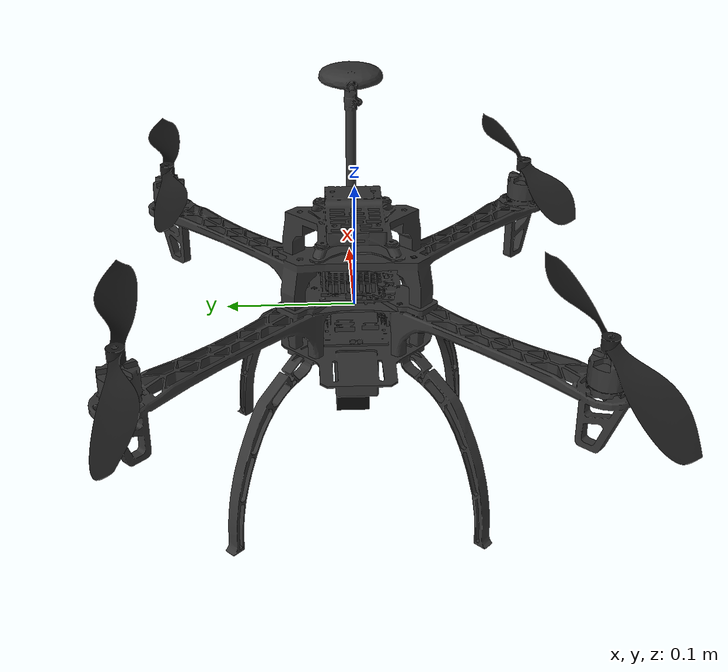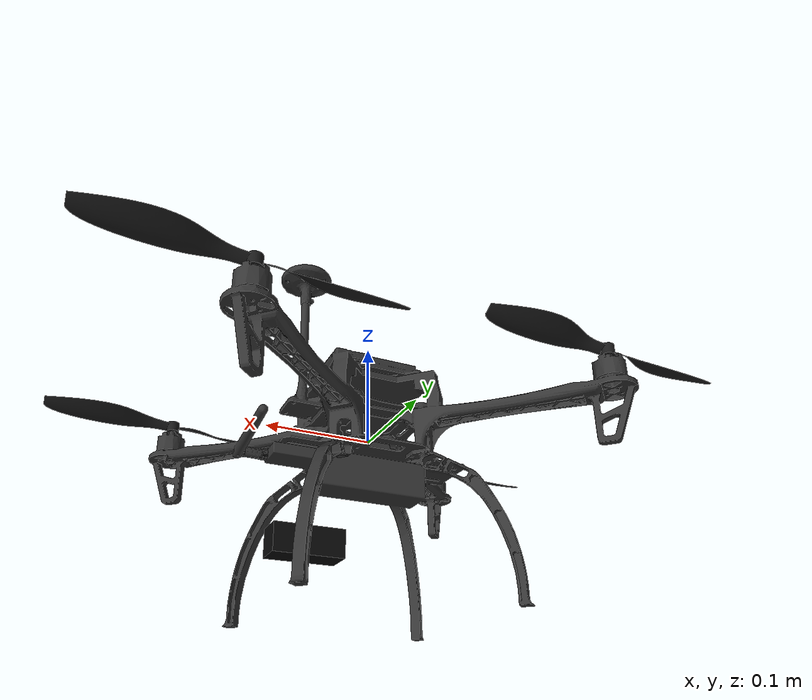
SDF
<?xml version="1.0" encoding="UTF-8"?>
<sdf version='1.9'>
  <model name='f450'>
    <pose>0 0 0 0 0 0</pose>
    <self_collide>false</self_collide>
    <static>false</static>

    <!-- ==================== BASE LINK ==================== -->
    <link name="base_link">
      <inertial>
        <!-- mass 1.345kg (full drone incl. battery), CoG from CATIA V5 Z-up -->
        <mass>1.345</mass>
        <pose>0.006264 0.000157 0.00833 0 0 0</pose>
        <inertia>
          <ixx>0.014</ixx>
          <ixy>-5.368e-4</ixy>
          <ixz>3.48e-5</ixz>
          <iyy>0.023</iyy>
          <iyz>2.754e-5</iyz>
          <izz>0.015</izz>
        </inertia>
      </inertial>
      <gravity>true</gravity>
      <velocity_decay/>

      <!-- Body visual: STL in mm -> scale 0.001, Z-up (no rotation needed) -->
      <visual name="body_visual">
        <pose>0 0 0 0 0 0</pose>
        <geometry>
          <mesh>
            <scale>0.001 0.001 0.001</scale>
            <uri>model://f450/meshes/f450_body.stl</uri>
          </mesh>
        </geometry>
        <material>
          <ambient>0.15 0.15 0.15 1</ambient>
          <diffuse>0.20 0.20 0.20 1</diffuse>
          <specular>0.3 0.3 0.3 1</specular>
        </material>
      </visual>

      <!-- Body frame collision box -->
      <collision name="base_link_collision">
        <pose>0 0 0.005 0 0 0</pose>
        <geometry>
          <box><size>0.32 0.32 0.04</size></box>
        </geometry>
        <surface>
          <contact><ode><min_depth>0.001</min_depth><max_vel>0</max_vel></ode></contact>
          <friction><ode/></friction>
        </surface>
      </collision>

      <!-- Landing legs touch point: Z = -163mm from body origin (STL analysis) -->
      <collision name="landing_legs_collision">
        <pose>0 0 -0.163 0 0 0</pose>
        <geometry>
          <box><size>0.22 0.22 0.01</size></box>
        </geometry>
        <surface>
          <contact><ode><min_depth>0.001</min_depth><max_vel>0</max_vel></ode></contact>
          <friction><ode><mu>0.8</mu><mu2>0.8</mu2></ode></friction>
        </surface>
      </collision>

      <!-- Cosy WIZ PC3506 FHD webcam mounted under the F450 body -->
      <visual name="wiz_pc3506_camera_body_visual">
        <pose>0.06 0 -0.105 0 0 0</pose>
        <geometry>
          <box><size>0.065 0.028 0.026</size></box>
        </geometry>
        <material>
          <ambient>0.02 0.02 0.02 1</ambient>
          <diffuse>0.03 0.03 0.03 1</diffuse>
          <specular>0.2 0.2 0.2 1</specular>
        </material>
      </visual>

      <visual name="wiz_pc3506_camera_lens_visual">
        <pose>0.082 0 -0.105 0 1.5708 0</pose>
        <geometry>
          <cylinder><radius>0.011</radius><length>0.006</length></cylinder>
        </geometry>
        <material>
          <ambient>0.005 0.008 0.012 1</ambient>
          <diffuse>0.01 0.015 0.025 1</diffuse>
          <specular>0.6 0.6 0.7 1</specular>
        </material>
      </visual>

      <!-- ===== SENSORS ===== -->
      <sensor name="air_pressure_sensor" type="air_pressure">
        <gz_frame_id>base_link</gz_frame_id>
        <always_on>1</always_on>
        <update_rate>50</update_rate>
        <air_pressure>
          <pressure>
            <noise type="gaussian"><mean>0</mean><stddev>3</stddev></noise>
          </pressure>
        </air_pressure>
      </sensor>

      <sensor name="magnetometer_sensor" type="magnetometer">
        <gz_frame_id>base_link</gz_frame_id>
        <always_on>1</always_on>
        <update_rate>100</update_rate>
        <magnetometer>
          <x><noise type="gaussian"><stddev>0.0001</stddev></noise></x>
          <y><noise type="gaussian"><stddev>0.0001</stddev></noise></y>
          <z><noise type="gaussian"><stddev>0.0001</stddev></noise></z>
        </magnetometer>
      </sensor>

      <sensor name="imu_sensor" type="imu">
        <gz_frame_id>base_link</gz_frame_id>
        <always_on>1</always_on>
        <update_rate>250</update_rate>
        <imu>
          <angular_velocity>
            <x><noise type="gaussian"><mean>0.0</mean><stddev>0.0008726646</stddev></noise></x>
            <y><noise type="gaussian"><mean>0.0</mean><stddev>0.0008726646</stddev></noise></y>
            <z><noise type="gaussian"><mean>0.0</mean><stddev>0.0008726646</stddev></noise></z>
          </angular_velocity>
          <linear_acceleration>
            <x><noise type="gaussian"><mean>0.0</mean><stddev>0.00637</stddev></noise></x>
            <y><noise type="gaussian"><mean>0.0</mean><stddev>0.00637</stddev></noise></y>
            <z><noise type="gaussian"><mean>0.0</mean><stddev>0.00686</stddev></noise></z>
          </linear_acceleration>
        </imu>
      </sensor>

      <sensor name="navsat_sensor" type="navsat">
        <gz_frame_id>base_link</gz_frame_id>
        <always_on>1</always_on>
        <update_rate>30</update_rate>
      </sensor>

      <sensor name="wiz_pc3506_fhd_camera" type="camera">
        <pose>0.06 0 -0.125 0 1.5708 0</pose>
        <gz_frame_id>camera_optical_frame</gz_frame_id>
        <always_on>1</always_on>
        <update_rate>30</update_rate>
        <topic>/f450/camera/image_raw</topic>
        <camera>
          <horizontal_fov>0.899</horizontal_fov>
          <image>
            <width>640</width>
            <height>480</height>
            <format>R8G8B8</format>
          </image>
          <clip>
            <near>0.05</near>
            <far>50.0</far>
          </clip>
          <noise>
            <type>gaussian</type>
            <mean>0.0</mean>
            <stddev>0.005</stddev>
          </noise>
          <lens>
            <intrinsics>
              <fx>662.62</fx>
              <fy>618.45</fy>
              <cx>409.89</cx>
              <cy>220.37</cy>
              <s>0</s>
            </intrinsics>
          </lens>
        </camera>
      </sensor>
    </link>

    <!-- ==================== ROTOR 0: Front-Right (CCW) ==================== -->
    <link name="rotor_0">
      <gravity>true</gravity>
      <self_collide>false</self_collide>
      <velocity_decay/>
      <pose>0.1591 -0.1591 0.058 0 0 0</pose>
      <inertial>
        <mass>0.015</mass>
        <inertia>
          <ixx>5.0e-5</ixx><ixy>0</ixy><ixz>0</ixz>
          <iyy>5.0e-5</iyy><iyz>0</iyz><izz>1.0e-4</izz>
        </inertia>
      </inertial>
      <visual name="rotor_0_visual">
        <pose>0 0 0 0 0 0</pose>
        <geometry>
          <mesh>
            <scale>0.001 0.001 0.001</scale>
            <uri>model://f450/meshes/f450_prop.stl</uri>
          </mesh>
        </geometry>
        <material><ambient>0.1 0.1 0.1 1</ambient><diffuse>0.1 0.1 0.1 1</diffuse></material>
      </visual>
      <collision name="rotor_0_collision">
        <pose>0 0 0 0 0 0</pose>
        <geometry><cylinder><radius>0.130</radius><length>0.010</length></cylinder></geometry>
        <surface><contact><ode><min_depth>0.001</min_depth><max_vel>0</max_vel></ode></contact><friction><ode/></friction></surface>
      </collision>
    </link>
    <joint name="rotor_0_joint" type="revolute">
      <parent>base_link</parent><child>rotor_0</child>
      <axis>
        <xyz>0 0 1</xyz>
        <limit><lower>-1e+16</lower><upper>1e+16</upper></limit>
        <dynamics><spring_reference>0</spring_reference><spring_stiffness>0</spring_stiffness></dynamics>
      </axis>
    </joint>

    <!-- ==================== ROTOR 1: Rear-Left (CCW) ==================== -->
    <link name="rotor_1">
      <gravity>true</gravity>
      <self_collide>false</self_collide>
      <velocity_decay/>
      <pose>-0.1591 0.1591 0.058 0 0 0</pose>
      <inertial>
        <mass>0.015</mass>
        <inertia>
          <ixx>5.0e-5</ixx><ixy>0</ixy><ixz>0</ixz>
          <iyy>5.0e-5</iyy><iyz>0</iyz><izz>1.0e-4</izz>
        </inertia>
      </inertial>
      <visual name="rotor_1_visual">
        <pose>0 0 0 0 0 0</pose>
        <geometry>
          <mesh>
            <scale>0.001 0.001 0.001</scale>
            <uri>model://f450/meshes/f450_prop.stl</uri>
          </mesh>
        </geometry>
        <material><ambient>0.1 0.1 0.1 1</ambient><diffuse>0.1 0.1 0.1 1</diffuse></material>
      </visual>
      <collision name="rotor_1_collision">
        <pose>0 0 0 0 0 0</pose>
        <geometry><cylinder><radius>0.130</radius><length>0.010</length></cylinder></geometry>
        <surface><contact><ode><min_depth>0.001</min_depth><max_vel>0</max_vel></ode></contact><friction><ode/></friction></surface>
      </collision>
    </link>
    <joint name="rotor_1_joint" type="revolute">
      <parent>base_link</parent><child>rotor_1</child>
      <axis>
        <xyz>0 0 1</xyz>
        <limit><lower>-1e+16</lower><upper>1e+16</upper></limit>
        <dynamics><spring_reference>0</spring_reference><spring_stiffness>0</spring_stiffness></dynamics>
      </axis>
    </joint>

    <!-- ==================== ROTOR 2: Front-Left (CW) ==================== -->
    <link name="rotor_2">
      <gravity>true</gravity>
      <self_collide>false</self_collide>
      <velocity_decay/>
      <pose>0.1591 0.1591 0.058 0 0 0</pose>
      <inertial>
        <mass>0.015</mass>
        <inertia>
          <ixx>5.0e-5</ixx><ixy>0</ixy><ixz>0</ixz>
          <iyy>5.0e-5</iyy><iyz>0</iyz><izz>1.0e-4</izz>
        </inertia>
      </inertial>
      <visual name="rotor_2_visual">
        <pose>0 0 0 0 0 3.14159</pose>
        <geometry>
          <mesh>
            <scale>0.001 0.001 0.001</scale>
            <uri>model://f450/meshes/f450_prop.stl</uri>
          </mesh>
        </geometry>
        <material><ambient>0.1 0.1 0.1 1</ambient><diffuse>0.1 0.1 0.1 1</diffuse></material>
      </visual>
      <collision name="rotor_2_collision">
        <pose>0 0 0 0 0 0</pose>
        <geometry><cylinder><radius>0.130</radius><length>0.010</length></cylinder></geometry>
        <surface><contact><ode><min_depth>0.001</min_depth><max_vel>0</max_vel></ode></contact><friction><ode/></friction></surface>
      </collision>
    </link>
    <joint name="rotor_2_joint" type="revolute">
      <parent>base_link</parent><child>rotor_2</child>
      <axis>
        <xyz>0 0 1</xyz>
        <limit><lower>-1e+16</lower><upper>1e+16</upper></limit>
        <dynamics><spring_reference>0</spring_reference><spring_stiffness>0</spring_stiffness></dynamics>
      </axis>
    </joint>

    <!-- ==================== ROTOR 3: Rear-Right (CW) ==================== -->
    <link name="rotor_3">
      <gravity>true</gravity>
      <self_collide>false</self_collide>
      <velocity_decay/>
      <pose>-0.1591 -0.1591 0.058 0 0 0</pose>
      <inertial>
        <mass>0.015</mass>
        <inertia>
          <ixx>5.0e-5</ixx><ixy>0</ixy><ixz>0</ixz>
          <iyy>5.0e-5</iyy><iyz>0</iyz><izz>1.0e-4</izz>
        </inertia>
      </inertial>
      <visual name="rotor_3_visual">
        <pose>0 0 0 0 0 3.14159</pose>
        <geometry>
          <mesh>
            <scale>0.001 0.001 0.001</scale>
            <uri>model://f450/meshes/f450_prop.stl</uri>
          </mesh>
        </geometry>
        <material><ambient>0.1 0.1 0.1 1</ambient><diffuse>0.1 0.1 0.1 1</diffuse></material>
      </visual>
      <collision name="rotor_3_collision">
        <pose>0 0 0 0 0 0</pose>
        <geometry><cylinder><radius>0.130</radius><length>0.010</length></cylinder></geometry>
        <surface><contact><ode><min_depth>0.001</min_depth><max_vel>0</max_vel></ode></contact><friction><ode/></friction></surface>
      </collision>
    </link>
    <joint name="rotor_3_joint" type="revolute">
      <parent>base_link</parent><child>rotor_3</child>
      <axis>
        <xyz>0 0 1</xyz>
        <limit><lower>-1e+16</lower><upper>1e+16</upper></limit>
        <dynamics><spring_reference>0</spring_reference><spring_stiffness>0</spring_stiffness></dynamics>
      </axis>
    </joint>

    <!-- ==================== MOTOR PLUGINS ==================== -->
    <plugin filename="gz-sim-multicopter-motor-model-system"
      name="gz::sim::systems::MulticopterMotorModel">
      <jointName>rotor_0_joint</jointName><linkName>rotor_0</linkName>
      <turningDirection>ccw</turningDirection>
      <timeConstantUp>0.0125</timeConstantUp><timeConstantDown>0.025</timeConstantDown>
      <maxRotVelocity>1069.0</maxRotVelocity>
      <motorConstant>7.73e-06</motorConstant><momentConstant>0.02</momentConstant>
      <commandSubTopic>command/motor_speed</commandSubTopic>
      <motorNumber>0</motorNumber>
      <rotorDragCoefficient>0.000175</rotorDragCoefficient>
      <rollingMomentCoefficient>1e-06</rollingMomentCoefficient>
      <rotorVelocitySlowdownSim>10</rotorVelocitySlowdownSim>
      <motorType>velocity</motorType>
    </plugin>

    <plugin filename="gz-sim-multicopter-motor-model-system"
      name="gz::sim::systems::MulticopterMotorModel">
      <jointName>rotor_1_joint</jointName><linkName>rotor_1</linkName>
      <turningDirection>ccw</turningDirection>
      <timeConstantUp>0.0125</timeConstantUp><timeConstantDown>0.025</timeConstantDown>
      <maxRotVelocity>1069.0</maxRotVelocity>
      <motorConstant>7.73e-06</motorConstant><momentConstant>0.02</momentConstant>
      <commandSubTopic>command/motor_speed</commandSubTopic>
      <motorNumber>1</motorNumber>
      <rotorDragCoefficient>0.000175</rotorDragCoefficient>
      <rollingMomentCoefficient>1e-06</rollingMomentCoefficient>
      <rotorVelocitySlowdownSim>10</rotorVelocitySlowdownSim>
      <motorType>velocity</motorType>
    </plugin>

    <plugin filename="gz-sim-multicopter-motor-model-system"
      name="gz::sim::systems::MulticopterMotorModel">
      <jointName>rotor_2_joint</jointName><linkName>rotor_2</linkName>
      <turningDirection>cw</turningDirection>
      <timeConstantUp>0.0125</timeConstantUp><timeConstantDown>0.025</timeConstantDown>
      <maxRotVelocity>1069.0</maxRotVelocity>
      <motorConstant>7.73e-06</motorConstant><momentConstant>0.02</momentConstant>
      <commandSubTopic>command/motor_speed</commandSubTopic>
      <motorNumber>2</motorNumber>
      <rotorDragCoefficient>0.000175</rotorDragCoefficient>
      <rollingMomentCoefficient>1e-06</rollingMomentCoefficient>
      <rotorVelocitySlowdownSim>10</rotorVelocitySlowdownSim>
      <motorType>velocity</motorType>
    </plugin>

    <plugin filename="gz-sim-multicopter-motor-model-system"
      name="gz::sim::systems::MulticopterMotorModel">
      <jointName>rotor_3_joint</jointName><linkName>rotor_3</linkName>
      <turningDirection>cw</turningDirection>
      <timeConstantUp>0.0125</timeConstantUp><timeConstantDown>0.025</timeConstantDown>
      <maxRotVelocity>1069.0</maxRotVelocity>
      <motorConstant>7.73e-06</motorConstant><momentConstant>0.02</momentConstant>
      <commandSubTopic>command/motor_speed</commandSubTopic>
      <motorNumber>3</motorNumber>
      <rotorDragCoefficient>0.000175</rotorDragCoefficient>
      <rollingMomentCoefficient>1e-06</rollingMomentCoefficient>
      <rotorVelocitySlowdownSim>10</rotorVelocitySlowdownSim>
      <motorType>velocity</motorType>
    </plugin>

  </model>
</sdf>
